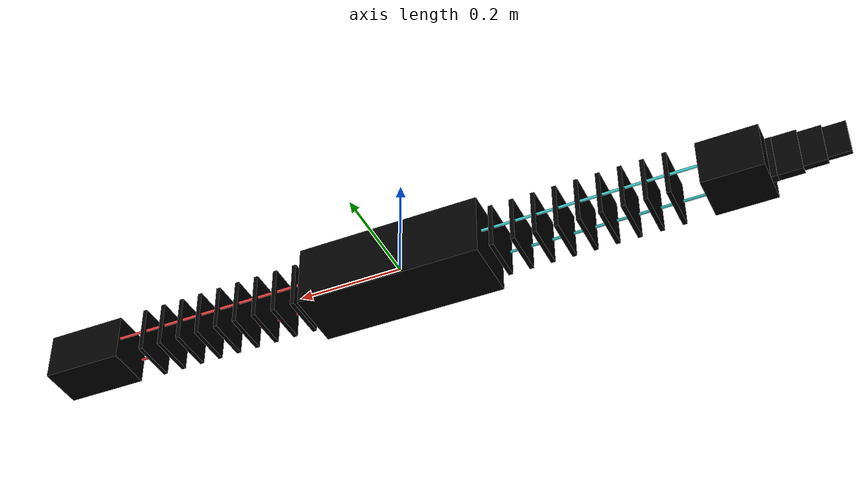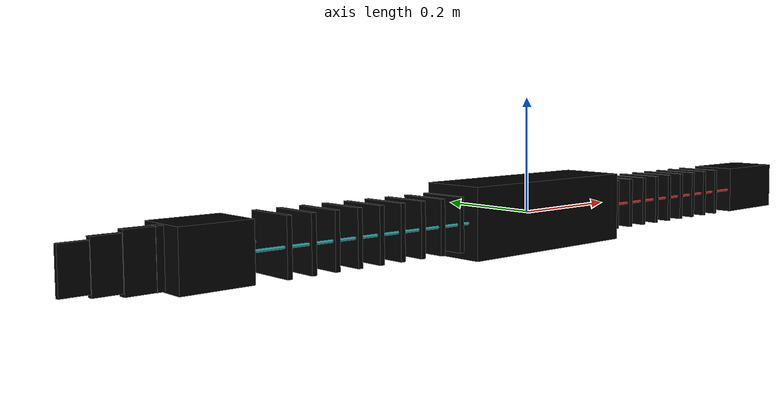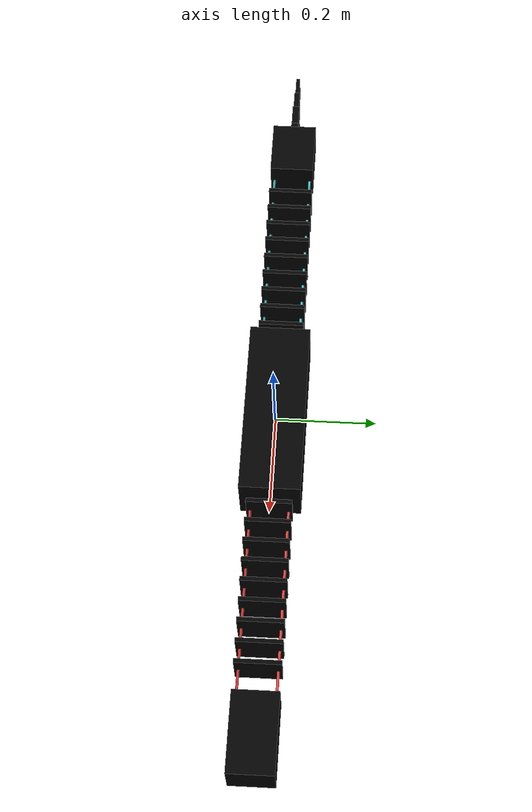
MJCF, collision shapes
<mujoco model="eel_2d_robot">
  <compiler angle="degree" autolimits="true" inertiafromgeom="true" meshdir="generated_stl" />
  <option timestep="0.002" gravity="0 0 0" integrator="implicitfast" cone="elliptic" iterations="100" />
  <default>
    <site type="sphere" size="0.004" rgba="0.90 0.20 0.20 1" group="3" />
    <default class="root_joint">
      <joint limited="false" stiffness="0" armature="0.01" damping="0.4" />
    </default>
    <default class="active_hinge">
      <joint type="hinge" axis="0 0 1" limited="true" range="-15 15" stiffness="1.041" damping="0.05" armature="0.0005" />
    </default>
    <default class="tail_hinge">
      <joint type="hinge" axis="0 0 1" limited="true" range="-25 25" stiffness="0.18" damping="0.02" armature="0.0002" />
    </default>
    <default class="tendon_motor">
      <motor ctrllimited="true" ctrlrange="0 100" gear="1" />
    </default>
    <default class="servo_joint">
      <joint type="hinge" axis="0 0 1" limited="true" range="-63.025357 63.025357" damping="0.2" armature="0.001" />
    </default>
  </default>
  <asset>
    <mesh name="centre_compartment_mesh" file="centre_compartment_mesh.stl" />
    <mesh name="vertebra_mesh" file="vertebra_mesh.stl" />
    <mesh name="head_mesh" file="head_mesh.stl" />
    <mesh name="tail_joint_mesh" file="tail_joint_mesh.stl" />
    <mesh name="tail_seg1_mesh" file="tail_seg1_mesh.stl" />
    <mesh name="tail_seg2_mesh" file="tail_seg2_mesh.stl" />
    <mesh name="tail_seg3_mesh" file="tail_seg3_mesh.stl" />
    <mesh name="tail_seg4_mesh" file="tail_seg4_mesh.stl" />
  </asset>
  <worldbody>
    <body name="front_servo_body" pos="0 0 0">
      <joint name="front_servo" class="servo_joint" />
      <geom name="front_servo_geom" type="sphere" size="0.001" mass="1e-6" rgba="0 0 0 0" contype="0" conaffinity="0" />
    </body>
    <body name="back_servo_body" pos="0 0 0">
      <joint name="back_servo" class="servo_joint" />
      <geom name="back_servo_geom" type="sphere" size="0.001" mass="1e-6" rgba="0 0 0 0" contype="0" conaffinity="0" />
    </body>
    <body name="centre_compartment" pos="0 0 0">
      <joint name="root_x" class="root_joint" type="slide" axis="1 0 0" />
      <joint name="root_y" class="root_joint" type="slide" axis="0 1 0" />
      <joint name="root_yaw" class="root_joint" type="hinge" axis="0 0 1" />
      <geom name="centre_compartment_dyn" type="box" size="0.175 0.06 0.06" mass="2.5" rgba="0 0 0 0" contype="1" conaffinity="2" group="4" />
      <geom name="centre_compartment_vis" type="mesh" mesh="centre_compartment_mesh" mass="0" rgba="0.18 0.22 0.33 1" contype="0" conaffinity="0" group="1" />
      <site name="centre_reference" pos="0 0 0" rgba="0 0 0 0" />
      <site name="centre_front_left" pos="0.175 0.0375 0" />
      <site name="centre_front_right" pos="0.175 -0.0375 0" />
      <site name="centre_back_left" pos="-0.175 0.0375 0" />
      <site name="centre_back_right" pos="-0.175 -0.0375 0" />
      <body name="front_v1" pos="0.195 0 0">
        <joint name="front_v1_yaw" class="active_hinge" pos="-0.02 0 0" />
        <geom name="front_v1_dyn" type="box" size="0.004 0.044985 0.045" mass="0.05" rgba="0 0 0 0" contype="1" conaffinity="2" group="4" />
        <geom name="front_v1_vis" type="mesh" mesh="vertebra_mesh" mass="0" rgba="0.20 0.54 0.81 1" contype="0" conaffinity="0" group="1" />
        <site name="front_v1_left" pos="0 0.0375 0" />
        <site name="front_v1_right" pos="0 -0.0375 0" />
        <body name="front_v2" pos="0.04 0 0">
          <joint name="front_v2_yaw" class="active_hinge" pos="-0.02 0 0" />
          <geom name="front_v2_dyn" type="box" size="0.004 0.044985 0.045" mass="0.05" rgba="0 0 0 0" contype="1" conaffinity="2" group="4" />
          <geom name="front_v2_vis" type="mesh" mesh="vertebra_mesh" mass="0" rgba="0.20 0.54 0.81 1" contype="0" conaffinity="0" group="1" />
          <site name="front_v2_left" pos="0 0.0375 0" />
          <site name="front_v2_right" pos="0 -0.0375 0" />
          <body name="front_v3" pos="0.04 0 0">
            <geom name="front_v3_dyn" type="box" size="0.004 0.044985 0.045" mass="0.05" rgba="0 0 0 0" contype="1" conaffinity="2" group="4" />
            <geom name="front_v3_vis" type="mesh" mesh="vertebra_mesh" mass="0" rgba="0.20 0.54 0.81 1" contype="0" conaffinity="0" group="1" />
            <site name="front_v3_left" pos="0 0.0375 0" />
            <site name="front_v3_right" pos="0 -0.0375 0" />
            <body name="front_v4" pos="0.04 0 0">
              <joint name="front_v4_yaw" class="active_hinge" pos="-0.02 0 0" />
              <geom name="front_v4_dyn" type="box" size="0.004 0.044985 0.045" mass="0.05" rgba="0 0 0 0" contype="1" conaffinity="2" group="4" />
              <geom name="front_v4_vis" type="mesh" mesh="vertebra_mesh" mass="0" rgba="0.20 0.54 0.81 1" contype="0" conaffinity="0" group="1" />
              <site name="front_v4_left" pos="0 0.0375 0" />
              <site name="front_v4_right" pos="0 -0.0375 0" />
              <body name="front_v5" pos="0.04 0 0">
                <geom name="front_v5_dyn" type="box" size="0.004 0.044985 0.045" mass="0.05" rgba="0 0 0 0" contype="1" conaffinity="2" group="4" />
                <geom name="front_v5_vis" type="mesh" mesh="vertebra_mesh" mass="0" rgba="0.20 0.54 0.81 1" contype="0" conaffinity="0" group="1" />
                <site name="front_v5_left" pos="0 0.0375 0" />
                <site name="front_v5_right" pos="0 -0.0375 0" />
                <body name="front_v6" pos="0.04 0 0">
                  <joint name="front_v6_yaw" class="active_hinge" pos="-0.02 0 0" />
                  <geom name="front_v6_dyn" type="box" size="0.004 0.044985 0.045" mass="0.05" rgba="0 0 0 0" contype="1" conaffinity="2" group="4" />
                  <geom name="front_v6_vis" type="mesh" mesh="vertebra_mesh" mass="0" rgba="0.20 0.54 0.81 1" contype="0" conaffinity="0" group="1" />
                  <site name="front_v6_left" pos="0 0.0375 0" />
                  <site name="front_v6_right" pos="0 -0.0375 0" />
                  <body name="front_v7" pos="0.04 0 0">
                    <geom name="front_v7_dyn" type="box" size="0.004 0.044985 0.045" mass="0.05" rgba="0 0 0 0" contype="1" conaffinity="2" group="4" />
                    <geom name="front_v7_vis" type="mesh" mesh="vertebra_mesh" mass="0" rgba="0.20 0.54 0.81 1" contype="0" conaffinity="0" group="1" />
                    <site name="front_v7_left" pos="0 0.0375 0" />
                    <site name="front_v7_right" pos="0 -0.0375 0" />
                    <body name="front_v8" pos="0.04 0 0">
                      <geom name="front_v8_dyn" type="box" size="0.004 0.044985 0.045" mass="0.05" rgba="0 0 0 0" contype="1" conaffinity="2" group="4" />
                      <geom name="front_v8_vis" type="mesh" mesh="vertebra_mesh" mass="0" rgba="0.20 0.54 0.81 1" contype="0" conaffinity="0" group="1" />
                      <site name="front_v8_left" pos="0 0.0375 0" />
                      <site name="front_v8_right" pos="0 -0.0375 0" />
                      <body name="front_v9" pos="0.04 0 0">
                        <joint name="front_v9_yaw" class="active_hinge" pos="-0.02 0 0" />
                        <geom name="front_v9_dyn" type="box" size="0.004 0.044985 0.045" mass="0.05" rgba="0 0 0 0" contype="1" conaffinity="2" group="4" />
                        <geom name="front_v9_vis" type="mesh" mesh="vertebra_mesh" mass="0" rgba="0.20 0.54 0.81 1" contype="0" conaffinity="0" group="1" />
                        <site name="front_v9_left" pos="0 0.0375 0" />
                        <site name="front_v9_right" pos="0 -0.0375 0" />
                        <body name="head" pos="0.1315 0 0">
                          <geom name="head_dyn" type="box" size="0.0775 0.044989 0.044989" mass="0.874703" rgba="0 0 0 0" contype="1" conaffinity="2" group="4" />
                          <geom name="head_vis" type="mesh" mesh="head_mesh" mass="0" rgba="0.10 0.37 0.64 1" contype="0" conaffinity="0" group="1" />
                          <camera name="head_camera" pos="0.08 0 0.08" xyaxes="0 -1 0 0.34 0 0.94" fovy="120" />
                          <site name="head_left" pos="-0.0725 0.0375 0" />
                          <site name="head_right" pos="-0.0725 -0.0375 0" />
                        </body>
                      </body>
                    </body>
                  </body>
                </body>
              </body>
            </body>
          </body>
        </body>
      </body>
      <body name="back_v1" pos="-0.195 0 0">
        <joint name="back_v1_yaw" class="active_hinge" pos="0.02 0 0" />
        <geom name="back_v1_dyn" type="box" size="0.004 0.044985 0.045" mass="0.05" rgba="0 0 0 0" contype="1" conaffinity="2" group="4" />
        <geom name="back_v1_vis" type="mesh" mesh="vertebra_mesh" mass="0" rgba="0.20 0.54 0.81 1" contype="0" conaffinity="0" group="1" />
        <site name="back_v1_left" pos="0 0.0375 0" />
        <site name="back_v1_right" pos="0 -0.0375 0" />
        <body name="back_v2" pos="-0.04 0 0">
          <joint name="back_v2_yaw" class="active_hinge" pos="0.02 0 0" />
          <geom name="back_v2_dyn" type="box" size="0.004 0.044985 0.045" mass="0.05" rgba="0 0 0 0" contype="1" conaffinity="2" group="4" />
          <geom name="back_v2_vis" type="mesh" mesh="vertebra_mesh" mass="0" rgba="0.20 0.54 0.81 1" contype="0" conaffinity="0" group="1" />
          <site name="back_v2_left" pos="0 0.0375 0" />
          <site name="back_v2_right" pos="0 -0.0375 0" />
          <body name="back_v3" pos="-0.04 0 0">
            <geom name="back_v3_dyn" type="box" size="0.004 0.044985 0.045" mass="0.05" rgba="0 0 0 0" contype="1" conaffinity="2" group="4" />
            <geom name="back_v3_vis" type="mesh" mesh="vertebra_mesh" mass="0" rgba="0.20 0.54 0.81 1" contype="0" conaffinity="0" group="1" />
            <site name="back_v3_left" pos="0 0.0375 0" />
            <site name="back_v3_right" pos="0 -0.0375 0" />
            <body name="back_v4" pos="-0.04 0 0">
              <joint name="back_v4_yaw" class="active_hinge" pos="0.02 0 0" />
              <geom name="back_v4_dyn" type="box" size="0.004 0.044985 0.045" mass="0.05" rgba="0 0 0 0" contype="1" conaffinity="2" group="4" />
              <geom name="back_v4_vis" type="mesh" mesh="vertebra_mesh" mass="0" rgba="0.20 0.54 0.81 1" contype="0" conaffinity="0" group="1" />
              <site name="back_v4_left" pos="0 0.0375 0" />
              <site name="back_v4_right" pos="0 -0.0375 0" />
              <body name="back_v5" pos="-0.04 0 0">
                <geom name="back_v5_dyn" type="box" size="0.004 0.044985 0.045" mass="0.05" rgba="0 0 0 0" contype="1" conaffinity="2" group="4" />
                <geom name="back_v5_vis" type="mesh" mesh="vertebra_mesh" mass="0" rgba="0.20 0.54 0.81 1" contype="0" conaffinity="0" group="1" />
                <site name="back_v5_left" pos="0 0.0375 0" />
                <site name="back_v5_right" pos="0 -0.0375 0" />
                <body name="back_v6" pos="-0.04 0 0">
                  <joint name="back_v6_yaw" class="active_hinge" pos="0.02 0 0" />
                  <geom name="back_v6_dyn" type="box" size="0.004 0.044985 0.045" mass="0.05" rgba="0 0 0 0" contype="1" conaffinity="2" group="4" />
                  <geom name="back_v6_vis" type="mesh" mesh="vertebra_mesh" mass="0" rgba="0.20 0.54 0.81 1" contype="0" conaffinity="0" group="1" />
                  <site name="back_v6_left" pos="0 0.0375 0" />
                  <site name="back_v6_right" pos="0 -0.0375 0" />
                  <body name="back_v7" pos="-0.04 0 0">
                    <geom name="back_v7_dyn" type="box" size="0.004 0.044985 0.045" mass="0.05" rgba="0 0 0 0" contype="1" conaffinity="2" group="4" />
                    <geom name="back_v7_vis" type="mesh" mesh="vertebra_mesh" mass="0" rgba="0.20 0.54 0.81 1" contype="0" conaffinity="0" group="1" />
                    <site name="back_v7_left" pos="0 0.0375 0" />
                    <site name="back_v7_right" pos="0 -0.0375 0" />
                    <body name="back_v8" pos="-0.04 0 0">
                      <geom name="back_v8_dyn" type="box" size="0.004 0.044985 0.045" mass="0.05" rgba="0 0 0 0" contype="1" conaffinity="2" group="4" />
                      <geom name="back_v8_vis" type="mesh" mesh="vertebra_mesh" mass="0" rgba="0.20 0.54 0.81 1" contype="0" conaffinity="0" group="1" />
                      <site name="back_v8_left" pos="0 0.0375 0" />
                      <site name="back_v8_right" pos="0 -0.0375 0" />
                      <body name="back_v9" pos="-0.04 0 0">
                        <joint name="back_v9_yaw" class="active_hinge" pos="0.02 0 0" />
                        <geom name="back_v9_dyn" type="box" size="0.004 0.044985 0.045" mass="0.05" rgba="0 0 0 0" contype="1" conaffinity="2" group="4" />
                        <geom name="back_v9_vis" type="mesh" mesh="vertebra_mesh" mass="0" rgba="0.20 0.54 0.81 1" contype="0" conaffinity="0" group="1" />
                        <site name="back_v9_left" pos="0 0.0375 0" />
                        <site name="back_v9_right" pos="0 -0.0375 0" />
                        <body name="joint_tail" pos="-0.109 0 0">
                          <geom name="joint_tail_dyn" type="box" size="0.055 0.04498 0.045" mass="0.687113" rgba="0 0 0 0" contype="1" conaffinity="2" group="4" />
                          <geom name="joint_tail_vis" type="mesh" mesh="tail_joint_mesh" mass="0" rgba="0.17 0.56 0.56 1" contype="0" conaffinity="0" group="1" />
                          <site name="joint_tail_left" pos="0.05 0.0375 0" />
                          <site name="joint_tail_right" pos="0.05 -0.0375 0" />
                          <body name="tail_seg1" pos="-0.04 0 0">
                            <joint name="tail_seg1_yaw" class="tail_hinge" pos="0.02 0 0" />
                            <geom name="tail_seg1_dyn" type="box" size="0.025785 0.0075 0.043364" mass="0.149228" rgba="0 0 0 0" contype="1" conaffinity="2" group="4" />
                            <geom name="tail_seg1_vis" type="mesh" mesh="tail_seg1_mesh" mass="0" rgba="0.88 0.75 0.44 1" contype="0" conaffinity="0" group="1" />
                            <body name="tail_seg2" pos="-0.04 0 0">
                              <joint name="tail_seg2_yaw" class="tail_hinge" pos="0.02 0 0" />
                              <geom name="tail_seg2_dyn" type="box" size="0.029215 0.006935 0.043302" mass="0.167388" rgba="0 0 0 0" contype="1" conaffinity="2" group="4" />
                              <geom name="tail_seg2_vis" type="mesh" mesh="tail_seg2_mesh" mass="0" rgba="0.88 0.75 0.44 1" contype="0" conaffinity="0" group="1" />
                              <body name="tail_seg3" pos="-0.04 0 0">
                                <joint name="tail_seg3_yaw" class="tail_hinge" pos="0.02 0 0" />
                                <geom name="tail_seg3_dyn" type="box" size="0.03 0.005405 0.038704" mass="0.114061" rgba="0 0 0 0" contype="1" conaffinity="2" group="4" />
                                <geom name="tail_seg3_vis" type="mesh" mesh="tail_seg3_mesh" mass="0" rgba="0.88 0.75 0.44 1" contype="0" conaffinity="0" group="1" />
                                <body name="tail_seg4" pos="-0.04 0 0">
                                  <joint name="tail_seg4_yaw" class="tail_hinge" pos="0.02 0 0" />
                                  <geom name="tail_seg4_dyn" type="box" size="0.03 0.003834 0.033982" mass="0.069322" rgba="0 0 0 0" contype="1" conaffinity="2" group="4" />
                                  <geom name="tail_seg4_vis" type="mesh" mesh="tail_seg4_mesh" mass="0" rgba="0.88 0.75 0.44 1" contype="0" conaffinity="0" group="1" />
                                </body>
                              </body>
                            </body>
                          </body>
                        </body>
                      </body>
                    </body>
                  </body>
                </body>
              </body>
            </body>
          </body>
        </body>
      </body>
    </body>
  </worldbody>
  <tendon>
    <spatial name="front_wire_left" width="0.0025" rgba="0.95 0.25 0.25 1">
      <site site="centre_front_left" />
      <site site="front_v1_left" />
      <site site="front_v2_left" />
      <site site="front_v3_left" />
      <site site="front_v4_left" />
      <site site="front_v5_left" />
      <site site="front_v6_left" />
      <site site="front_v7_left" />
      <site site="front_v8_left" />
      <site site="front_v9_left" />
      <site site="head_left" />
    </spatial>
    <spatial name="front_wire_right" width="0.0025" rgba="0.85 0.18 0.18 1">
      <site site="centre_front_right" />
      <site site="front_v1_right" />
      <site site="front_v2_right" />
      <site site="front_v3_right" />
      <site site="front_v4_right" />
      <site site="front_v5_right" />
      <site site="front_v6_right" />
      <site site="front_v7_right" />
      <site site="front_v8_right" />
      <site site="front_v9_right" />
      <site site="head_right" />
    </spatial>
    <spatial name="back_wire_left" width="0.0025" rgba="0.25 0.80 0.80 1">
      <site site="centre_back_left" />
      <site site="back_v1_left" />
      <site site="back_v2_left" />
      <site site="back_v3_left" />
      <site site="back_v4_left" />
      <site site="back_v5_left" />
      <site site="back_v6_left" />
      <site site="back_v7_left" />
      <site site="back_v8_left" />
      <site site="back_v9_left" />
      <site site="joint_tail_left" />
    </spatial>
    <spatial name="back_wire_right" width="0.0025" rgba="0.18 0.68 0.68 1">
      <site site="centre_back_right" />
      <site site="back_v1_right" />
      <site site="back_v2_right" />
      <site site="back_v3_right" />
      <site site="back_v4_right" />
      <site site="back_v5_right" />
      <site site="back_v6_right" />
      <site site="back_v7_right" />
      <site site="back_v8_right" />
      <site site="back_v9_right" />
      <site site="joint_tail_right" />
    </spatial>
    <fixed name="front_servo_tendon">
      <joint joint="front_servo" coef="0.0375" />
    </fixed>
    <fixed name="back_servo_tendon">
      <joint joint="back_servo" coef="0.0375" />
    </fixed>
  </tendon>
  <equality>
    <tendon name="front_left_couple" tendon1="front_wire_left" tendon2="front_servo_tendon" polycoef="0 -1 0 0 0" solref="0.002 1" solimp="0.99 0.999 0.001" />
    <tendon name="front_right_couple" tendon1="front_wire_right" tendon2="front_servo_tendon" polycoef="0 1 0 0 0" solref="0.002 1" solimp="0.99 0.999 0.001" />
    <tendon name="back_left_couple" tendon1="back_wire_left" tendon2="back_servo_tendon" polycoef="0 -1 0 0 0" solref="0.002 1" solimp="0.99 0.999 0.001" />
    <tendon name="back_right_couple" tendon1="back_wire_right" tendon2="back_servo_tendon" polycoef="0 1 0 0 0" solref="0.002 1" solimp="0.99 0.999 0.001" />
  </equality>
  <actuator>
    <position name="front_servo_act" joint="front_servo" ctrlrange="-1.1 1.1" kp="120" />
    <position name="back_servo_act" joint="back_servo" ctrlrange="-1.1 1.1" kp="120" />
  </actuator>
  <sensor>
    <jointpos name="front_servo_pos_sensor" joint="front_servo" />
    <jointpos name="back_servo_pos_sensor" joint="back_servo" />
    <jointpos name="root_x_pos_sensor" joint="root_x" />
    <jointpos name="root_y_pos_sensor" joint="root_y" />
    <jointpos name="root_yaw_pos_sensor" joint="root_yaw" />
    <jointvel name="root_x_vel_sensor" joint="root_x" />
    <jointvel name="root_y_vel_sensor" joint="root_y" />
    <jointvel name="root_yaw_vel_sensor" joint="root_yaw" />
    <framepos name="head_pos" objtype="xbody" objname="head" />
    <framepos name="joint_tail_pos" objtype="xbody" objname="joint_tail" />
    <framexaxis name="centre_xaxis" objtype="xbody" objname="centre_compartment" />
  </sensor>
</mujoco>
